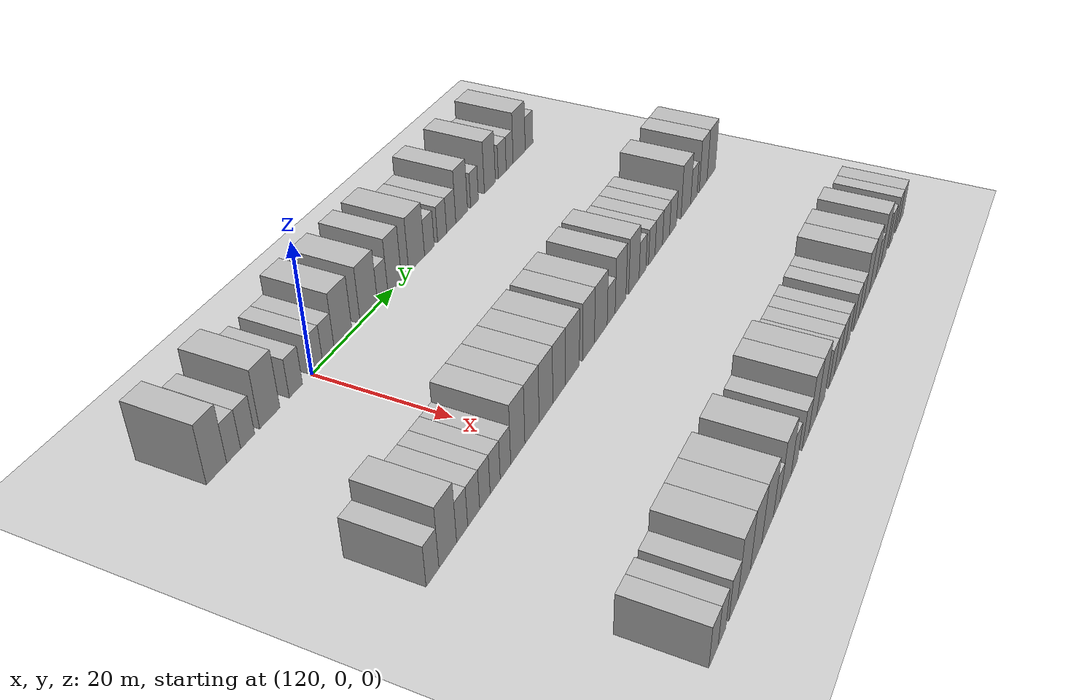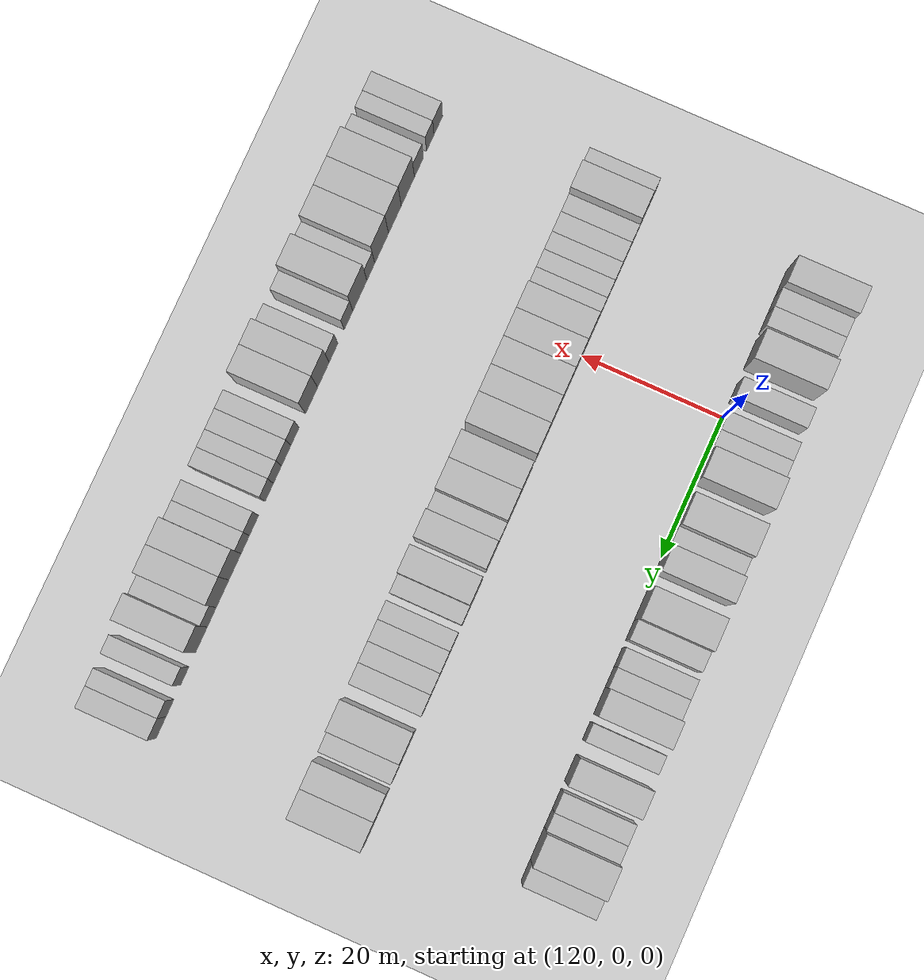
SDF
<sdf version="1.6">
 <world name="default">
  <include>
   <name>ground_plane_2</name>
   <uri>model://HANNAS_ground_plane</uri>
   <pose>100 0 0  0 0 0</pose>
  </include>
  <model name="building_825">
   <static>1</static>
   <pose>115.0000 -19.5001 0 0.000000 0.000000 0.000000</pose>
   <link name="link">
    <pose>0 0 4.50 0 0 0</pose>
    <collision name="collision"><geometry><box><size>10.0000 3.7929 9.0000</size></box></geometry></collision>
    <visual name="visual">
     <cast_shadows>0</cast_shadows>
     <geometry><box><size>10.0000 3.7929 9.0000</size></box></geometry>
     <material>
      <script>
       <uri>model://HANNAS_wall/materials/scripts</uri>
       <uri>model://HANNAS_wall/materials/textures</uri>
       <name>vrc/HANNAS_wall</name>
      </script>
     </material>
    </visual>
   </link>
  </model>
  <model name="building_826">
   <static>1</static>
   <pose>115.0000 -16.2622 0 0.000000 0.000000 0.000000</pose>
   <link name="link">
    <pose>0 0 3.00 0 0 0</pose>
    <collision name="collision"><geometry><box><size>10.0000 2.6829 6.0000</size></box></geometry></collision>
    <visual name="visual">
     <cast_shadows>0</cast_shadows>
     <geometry><box><size>10.0000 2.6829 6.0000</size></box></geometry>
     <material>
      <script>
       <uri>model://HANNAS_wall/materials/scripts</uri>
       <uri>model://HANNAS_wall/materials/textures</uri>
       <name>vrc/HANNAS_wall</name>
      </script>
     </material>
    </visual>
   </link>
  </model>
  <model name="building_827">
   <static>1</static>
   <pose>115.0000 -13.5360 0 0.000000 0.000000 0.000000</pose>
   <link name="link">
    <pose>0 0 3.00 0 0 0</pose>
    <collision name="collision"><geometry><box><size>10.0000 2.7694 6.0000</size></box></geometry></collision>
    <visual name="visual">
     <cast_shadows>0</cast_shadows>
     <geometry><box><size>10.0000 2.7694 6.0000</size></box></geometry>
     <material>
      <script>
       <uri>model://HANNAS_wall/materials/scripts</uri>
       <uri>model://HANNAS_wall/materials/textures</uri>
       <name>vrc/HANNAS_wall</name>
      </script>
     </material>
    </visual>
   </link>
  </model>
  <model name="building_828">
   <static>1</static>
   <pose>115.0000 -9.0555 0 0.000000 0.000000 0.000000</pose>
   <link name="link">
    <pose>0 0 4.50 0 0 0</pose>
    <collision name="collision"><geometry><box><size>10.0000 4.1915 9.0000</size></box></geometry></collision>
    <visual name="visual">
     <cast_shadows>0</cast_shadows>
     <geometry><box><size>10.0000 4.1915 9.0000</size></box></geometry>
     <material>
      <script>
       <uri>model://HANNAS_wall/materials/scripts</uri>
       <uri>model://HANNAS_wall/materials/textures</uri>
       <name>vrc/HANNAS_wall</name>
      </script>
     </material>
    </visual>
   </link>
  </model>
  <model name="building_829">
   <static>1</static>
   <pose>115.0000 -3.5250 0 0.000000 0.000000 0.000000</pose>
   <link name="link">
    <pose>0 0 3.00 0 0 0</pose>
    <collision name="collision"><geometry><box><size>10.0000 2.8696 6.0000</size></box></geometry></collision>
    <visual name="visual">
     <cast_shadows>0</cast_shadows>
     <geometry><box><size>10.0000 2.8696 6.0000</size></box></geometry>
     <material>
      <script>
       <uri>model://HANNAS_wall/materials/scripts</uri>
       <uri>model://HANNAS_wall/materials/textures</uri>
       <name>vrc/HANNAS_wall</name>
      </script>
     </material>
    </visual>
   </link>
  </model>
  <model name="building_830">
   <static>1</static>
   <pose>115.0000 1.2025 0 0.000000 0.000000 0.000000</pose>
   <link name="link">
    <pose>0 0 3.00 0 0 0</pose>
    <collision name="collision"><geometry><box><size>10.0000 2.5855 6.0000</size></box></geometry></collision>
    <visual name="visual">
     <cast_shadows>0</cast_shadows>
     <geometry><box><size>10.0000 2.5855 6.0000</size></box></geometry>
     <material>
      <script>
       <uri>model://HANNAS_wall/materials/scripts</uri>
       <uri>model://HANNAS_wall/materials/textures</uri>
       <name>vrc/HANNAS_wall</name>
      </script>
     </material>
    </visual>
   </link>
  </model>
  <model name="building_831">
   <static>1</static>
   <pose>115.0000 3.8654 0 0.000000 0.000000 0.000000</pose>
   <link name="link">
    <pose>0 0 3.00 0 0 0</pose>
    <collision name="collision"><geometry><box><size>10.0000 2.7402 6.0000</size></box></geometry></collision>
    <visual name="visual">
     <cast_shadows>0</cast_shadows>
     <geometry><box><size>10.0000 2.7402 6.0000</size></box></geometry>
     <material>
      <script>
       <uri>model://HANNAS_wall/materials/scripts</uri>
       <uri>model://HANNAS_wall/materials/textures</uri>
       <name>vrc/HANNAS_wall</name>
      </script>
     </material>
    </visual>
   </link>
  </model>
  <model name="building_832">
   <static>1</static>
   <pose>115.0000 7.3779 0 0.000000 0.000000 0.000000</pose>
   <link name="link">
    <pose>0 0 4.50 0 0 0</pose>
    <collision name="collision"><geometry><box><size>10.0000 4.2848 9.0000</size></box></geometry></collision>
    <visual name="visual">
     <cast_shadows>0</cast_shadows>
     <geometry><box><size>10.0000 4.2848 9.0000</size></box></geometry>
     <material>
      <script>
       <uri>model://HANNAS_wall/materials/scripts</uri>
       <uri>model://HANNAS_wall/materials/textures</uri>
       <name>vrc/HANNAS_wall</name>
      </script>
     </material>
    </visual>
   </link>
  </model>
  <model name="building_833">
   <static>1</static>
   <pose>115.0000 13.7513 0 0.000000 0.000000 0.000000</pose>
   <link name="link">
    <pose>0 0 4.50 0 0 0</pose>
    <collision name="collision"><geometry><box><size>10.0000 4.4622 9.0000</size></box></geometry></collision>
    <visual name="visual">
     <cast_shadows>0</cast_shadows>
     <geometry><box><size>10.0000 4.4622 9.0000</size></box></geometry>
     <material>
      <script>
       <uri>model://HANNAS_wall/materials/scripts</uri>
       <uri>model://HANNAS_wall/materials/textures</uri>
       <name>vrc/HANNAS_wall</name>
      </script>
     </material>
    </visual>
   </link>
  </model>
  <model name="building_834">
   <static>1</static>
   <pose>115.0000 17.3371 0 0.000000 0.000000 0.000000</pose>
   <link name="link">
    <pose>0 0 3.00 0 0 0</pose>
    <collision name="collision"><geometry><box><size>10.0000 2.7094 6.0000</size></box></geometry></collision>
    <visual name="visual">
     <cast_shadows>0</cast_shadows>
     <geometry><box><size>10.0000 2.7094 6.0000</size></box></geometry>
     <material>
      <script>
       <uri>model://HANNAS_wall/materials/scripts</uri>
       <uri>model://HANNAS_wall/materials/textures</uri>
       <name>vrc/HANNAS_wall</name>
      </script>
     </material>
    </visual>
   </link>
  </model>
  <model name="building_835">
   <static>1</static>
   <pose>115.0000 20.5198 0 0.000000 0.000000 0.000000</pose>
   <link name="link">
    <pose>0 0 4.50 0 0 0</pose>
    <collision name="collision"><geometry><box><size>10.0000 3.6559 9.0000</size></box></geometry></collision>
    <visual name="visual">
     <cast_shadows>0</cast_shadows>
     <geometry><box><size>10.0000 3.6559 9.0000</size></box></geometry>
     <material>
      <script>
       <uri>model://HANNAS_wall/materials/scripts</uri>
       <uri>model://HANNAS_wall/materials/textures</uri>
       <name>vrc/HANNAS_wall</name>
      </script>
     </material>
    </visual>
   </link>
  </model>
  <model name="building_836">
   <static>1</static>
   <pose>115.0000 26.5939 0 0.000000 0.000000 0.000000</pose>
   <link name="link">
    <pose>0 0 4.50 0 0 0</pose>
    <collision name="collision"><geometry><box><size>10.0000 4.4925 9.0000</size></box></geometry></collision>
    <visual name="visual">
     <cast_shadows>0</cast_shadows>
     <geometry><box><size>10.0000 4.4925 9.0000</size></box></geometry>
     <material>
      <script>
       <uri>model://HANNAS_wall/materials/scripts</uri>
       <uri>model://HANNAS_wall/materials/textures</uri>
       <name>vrc/HANNAS_wall</name>
      </script>
     </material>
    </visual>
   </link>
  </model>
  <model name="building_837">
   <static>1</static>
   <pose>115.0000 30.2646 0 0.000000 0.000000 0.000000</pose>
   <link name="link">
    <pose>0 0 3.00 0 0 0</pose>
    <collision name="collision"><geometry><box><size>10.0000 2.8488 6.0000</size></box></geometry></collision>
    <visual name="visual">
     <cast_shadows>0</cast_shadows>
     <geometry><box><size>10.0000 2.8488 6.0000</size></box></geometry>
     <material>
      <script>
       <uri>model://HANNAS_wall/materials/scripts</uri>
       <uri>model://HANNAS_wall/materials/textures</uri>
       <name>vrc/HANNAS_wall</name>
      </script>
     </material>
    </visual>
   </link>
  </model>
  <model name="building_838">
   <static>1</static>
   <pose>115.0000 34.0510 0 0.000000 0.000000 0.000000</pose>
   <link name="link">
    <pose>0 0 3.00 0 0 0</pose>
    <collision name="collision"><geometry><box><size>10.0000 2.7242 6.0000</size></box></geometry></collision>
    <visual name="visual">
     <cast_shadows>0</cast_shadows>
     <geometry><box><size>10.0000 2.7242 6.0000</size></box></geometry>
     <material>
      <script>
       <uri>model://HANNAS_wall/materials/scripts</uri>
       <uri>model://HANNAS_wall/materials/textures</uri>
       <name>vrc/HANNAS_wall</name>
      </script>
     </material>
    </visual>
   </link>
  </model>
  <model name="building_839">
   <static>1</static>
   <pose>115.0000 36.8342 0 0.000000 0.000000 0.000000</pose>
   <link name="link">
    <pose>0 0 3.00 0 0 0</pose>
    <collision name="collision"><geometry><box><size>10.0000 2.8423 6.0000</size></box></geometry></collision>
    <visual name="visual">
     <cast_shadows>0</cast_shadows>
     <geometry><box><size>10.0000 2.8423 6.0000</size></box></geometry>
     <material>
      <script>
       <uri>model://HANNAS_wall/materials/scripts</uri>
       <uri>model://HANNAS_wall/materials/textures</uri>
       <name>vrc/HANNAS_wall</name>
      </script>
     </material>
    </visual>
   </link>
  </model>
  <model name="building_840">
   <static>1</static>
   <pose>115.0000 40.1253 0 0.000000 0.000000 0.000000</pose>
   <link name="link">
    <pose>0 0 4.50 0 0 0</pose>
    <collision name="collision"><geometry><box><size>10.0000 3.7399 9.0000</size></box></geometry></collision>
    <visual name="visual">
     <cast_shadows>0</cast_shadows>
     <geometry><box><size>10.0000 3.7399 9.0000</size></box></geometry>
     <material>
      <script>
       <uri>model://HANNAS_wall/materials/scripts</uri>
       <uri>model://HANNAS_wall/materials/textures</uri>
       <name>vrc/HANNAS_wall</name>
      </script>
     </material>
    </visual>
   </link>
  </model>
  <model name="building_841">
   <static>1</static>
   <pose>115.0000 44.2584 0 0.000000 0.000000 0.000000</pose>
   <link name="link">
    <pose>0 0 3.00 0 0 0</pose>
    <collision name="collision"><geometry><box><size>10.0000 2.5263 6.0000</size></box></geometry></collision>
    <visual name="visual">
     <cast_shadows>0</cast_shadows>
     <geometry><box><size>10.0000 2.5263 6.0000</size></box></geometry>
     <material>
      <script>
       <uri>model://HANNAS_wall/materials/scripts</uri>
       <uri>model://HANNAS_wall/materials/textures</uri>
       <name>vrc/HANNAS_wall</name>
      </script>
     </material>
    </visual>
   </link>
  </model>
  <model name="building_842">
   <static>1</static>
   <pose>115.0000 49.4005 0 0.000000 0.000000 0.000000</pose>
   <link name="link">
    <pose>0 0 4.50 0 0 0</pose>
    <collision name="collision"><geometry><box><size>10.0000 3.7580 9.0000</size></box></geometry></collision>
    <visual name="visual">
     <cast_shadows>0</cast_shadows>
     <geometry><box><size>10.0000 3.7580 9.0000</size></box></geometry>
     <material>
      <script>
       <uri>model://HANNAS_wall/materials/scripts</uri>
       <uri>model://HANNAS_wall/materials/textures</uri>
       <name>vrc/HANNAS_wall</name>
      </script>
     </material>
    </visual>
   </link>
  </model>
  <model name="building_843">
   <static>1</static>
   <pose>115.0000 53.6810 0 0.000000 0.000000 0.000000</pose>
   <link name="link">
    <pose>0 0 3.00 0 0 0</pose>
    <collision name="collision"><geometry><box><size>10.0000 2.8030 6.0000</size></box></geometry></collision>
    <visual name="visual">
     <cast_shadows>0</cast_shadows>
     <geometry><box><size>10.0000 2.8030 6.0000</size></box></geometry>
     <material>
      <script>
       <uri>model://HANNAS_wall/materials/scripts</uri>
       <uri>model://HANNAS_wall/materials/textures</uri>
       <name>vrc/HANNAS_wall</name>
      </script>
     </material>
    </visual>
   </link>
  </model>
  <model name="building_844">
   <static>1</static>
   <pose>115.0000 56.3268 0 0.000000 0.000000 0.000000</pose>
   <link name="link">
    <pose>0 0 3.00 0 0 0</pose>
    <collision name="collision"><geometry><box><size>10.0000 2.4885 6.0000</size></box></geometry></collision>
    <visual name="visual">
     <cast_shadows>0</cast_shadows>
     <geometry><box><size>10.0000 2.4885 6.0000</size></box></geometry>
     <material>
      <script>
       <uri>model://HANNAS_wall/materials/scripts</uri>
       <uri>model://HANNAS_wall/materials/textures</uri>
       <name>vrc/HANNAS_wall</name>
      </script>
     </material>
    </visual>
   </link>
  </model>
  <model name="building_845">
   <static>1</static>
   <pose>115.0000 59.7958 0 0.000000 0.000000 0.000000</pose>
   <link name="link">
    <pose>0 0 4.50 0 0 0</pose>
    <collision name="collision"><geometry><box><size>10.0000 4.4495 9.0000</size></box></geometry></collision>
    <visual name="visual">
     <cast_shadows>0</cast_shadows>
     <geometry><box><size>10.0000 4.4495 9.0000</size></box></geometry>
     <material>
      <script>
       <uri>model://HANNAS_wall/materials/scripts</uri>
       <uri>model://HANNAS_wall/materials/textures</uri>
       <name>vrc/HANNAS_wall</name>
      </script>
     </material>
    </visual>
   </link>
  </model>
  <model name="building_846">
   <static>1</static>
   <pose>115.0000 63.4769 0 0.000000 0.000000 0.000000</pose>
   <link name="link">
    <pose>0 0 3.00 0 0 0</pose>
    <collision name="collision"><geometry><box><size>10.0000 2.9127 6.0000</size></box></geometry></collision>
    <visual name="visual">
     <cast_shadows>0</cast_shadows>
     <geometry><box><size>10.0000 2.9127 6.0000</size></box></geometry>
     <material>
      <script>
       <uri>model://HANNAS_wall/materials/scripts</uri>
       <uri>model://HANNAS_wall/materials/textures</uri>
       <name>vrc/HANNAS_wall</name>
      </script>
     </material>
    </visual>
   </link>
  </model>
  <model name="building_1055">
   <static>1</static>
   <pose>145.0000 -22.9527 0 0.000000 0.000000 0.000000</pose>
   <link name="link">
    <pose>0 0 3.00 0 0 0</pose>
    <collision name="collision"><geometry><box><size>10.0000 2.7662 6.0000</size></box></geometry></collision>
    <visual name="visual">
     <cast_shadows>0</cast_shadows>
     <geometry><box><size>10.0000 2.7662 6.0000</size></box></geometry>
     <material>
      <script>
       <uri>model://HANNAS_wall/materials/scripts</uri>
       <uri>model://HANNAS_wall/materials/textures</uri>
       <name>vrc/HANNAS_wall</name>
      </script>
     </material>
    </visual>
   </link>
  </model>
  <model name="building_1056">
   <static>1</static>
   <pose>145.0000 -19.6092 0 0.000000 0.000000 0.000000</pose>
   <link name="link">
    <pose>0 0 4.50 0 0 0</pose>
    <collision name="collision"><geometry><box><size>10.0000 3.9207 9.0000</size></box></geometry></collision>
    <visual name="visual">
     <cast_shadows>0</cast_shadows>
     <geometry><box><size>10.0000 3.9207 9.0000</size></box></geometry>
     <material>
      <script>
       <uri>model://HANNAS_wall/materials/scripts</uri>
       <uri>model://HANNAS_wall/materials/textures</uri>
       <name>vrc/HANNAS_wall</name>
      </script>
     </material>
    </visual>
   </link>
  </model>
  <model name="building_1057">
   <static>1</static>
   <pose>145.0000 -16.3688 0 0.000000 0.000000 0.000000</pose>
   <link name="link">
    <pose>0 0 3.00 0 0 0</pose>
    <collision name="collision"><geometry><box><size>10.0000 2.5601 6.0000</size></box></geometry></collision>
    <visual name="visual">
     <cast_shadows>0</cast_shadows>
     <geometry><box><size>10.0000 2.5601 6.0000</size></box></geometry>
     <material>
      <script>
       <uri>model://HANNAS_wall/materials/scripts</uri>
       <uri>model://HANNAS_wall/materials/textures</uri>
       <name>vrc/HANNAS_wall</name>
      </script>
     </material>
    </visual>
   </link>
  </model>
  <model name="building_1058">
   <static>1</static>
   <pose>145.0000 -13.6646 0 0.000000 0.000000 0.000000</pose>
   <link name="link">
    <pose>0 0 3.00 0 0 0</pose>
    <collision name="collision"><geometry><box><size>10.0000 2.8483 6.0000</size></box></geometry></collision>
    <visual name="visual">
     <cast_shadows>0</cast_shadows>
     <geometry><box><size>10.0000 2.8483 6.0000</size></box></geometry>
     <material>
      <script>
       <uri>model://HANNAS_wall/materials/scripts</uri>
       <uri>model://HANNAS_wall/materials/textures</uri>
       <name>vrc/HANNAS_wall</name>
      </script>
     </material>
    </visual>
   </link>
  </model>
  <model name="building_1059">
   <static>1</static>
   <pose>145.0000 -10.9659 0 0.000000 0.000000 0.000000</pose>
   <link name="link">
    <pose>0 0 3.00 0 0 0</pose>
    <collision name="collision"><geometry><box><size>10.0000 2.5492 6.0000</size></box></geometry></collision>
    <visual name="visual">
     <cast_shadows>0</cast_shadows>
     <geometry><box><size>10.0000 2.5492 6.0000</size></box></geometry>
     <material>
      <script>
       <uri>model://HANNAS_wall/materials/scripts</uri>
       <uri>model://HANNAS_wall/materials/textures</uri>
       <name>vrc/HANNAS_wall</name>
      </script>
     </material>
    </visual>
   </link>
  </model>
  <model name="building_1060">
   <static>1</static>
   <pose>145.0000 -8.4290 0 0.000000 0.000000 0.000000</pose>
   <link name="link">
    <pose>0 0 3.00 0 0 0</pose>
    <collision name="collision"><geometry><box><size>10.0000 2.5245 6.0000</size></box></geometry></collision>
    <visual name="visual">
     <cast_shadows>0</cast_shadows>
     <geometry><box><size>10.0000 2.5245 6.0000</size></box></geometry>
     <material>
      <script>
       <uri>model://HANNAS_wall/materials/scripts</uri>
       <uri>model://HANNAS_wall/materials/textures</uri>
       <name>vrc/HANNAS_wall</name>
      </script>
     </material>
    </visual>
   </link>
  </model>
  <model name="building_1061">
   <static>1</static>
   <pose>145.0000 -5.8126 0 0.000000 0.000000 0.000000</pose>
   <link name="link">
    <pose>0 0 3.00 0 0 0</pose>
    <collision name="collision"><geometry><box><size>10.0000 2.7082 6.0000</size></box></geometry></collision>
    <visual name="visual">
     <cast_shadows>0</cast_shadows>
     <geometry><box><size>10.0000 2.7082 6.0000</size></box></geometry>
     <material>
      <script>
       <uri>model://HANNAS_wall/materials/scripts</uri>
       <uri>model://HANNAS_wall/materials/textures</uri>
       <name>vrc/HANNAS_wall</name>
      </script>
     </material>
    </visual>
   </link>
  </model>
  <model name="building_1062">
   <static>1</static>
   <pose>145.0000 -2.5763 0 0.000000 0.000000 0.000000</pose>
   <link name="link">
    <pose>0 0 4.50 0 0 0</pose>
    <collision name="collision"><geometry><box><size>10.0000 3.7644 9.0000</size></box></geometry></collision>
    <visual name="visual">
     <cast_shadows>0</cast_shadows>
     <geometry><box><size>10.0000 3.7644 9.0000</size></box></geometry>
     <material>
      <script>
       <uri>model://HANNAS_wall/materials/scripts</uri>
       <uri>model://HANNAS_wall/materials/textures</uri>
       <name>vrc/HANNAS_wall</name>
      </script>
     </material>
    </visual>
   </link>
  </model>
  <model name="building_1063">
   <static>1</static>
   <pose>145.0000 1.2778 0 0.000000 0.000000 0.000000</pose>
   <link name="link">
    <pose>0 0 4.50 0 0 0</pose>
    <collision name="collision"><geometry><box><size>10.0000 3.9438 9.0000</size></box></geometry></collision>
    <visual name="visual">
     <cast_shadows>0</cast_shadows>
     <geometry><box><size>10.0000 3.9438 9.0000</size></box></geometry>
     <material>
      <script>
       <uri>model://HANNAS_wall/materials/scripts</uri>
       <uri>model://HANNAS_wall/materials/textures</uri>
       <name>vrc/HANNAS_wall</name>
      </script>
     </material>
    </visual>
   </link>
  </model>
  <model name="building_1064">
   <static>1</static>
   <pose>145.0000 5.2149 0 0.000000 0.000000 0.000000</pose>
   <link name="link">
    <pose>0 0 4.50 0 0 0</pose>
    <collision name="collision"><geometry><box><size>10.0000 3.9303 9.0000</size></box></geometry></collision>
    <visual name="visual">
     <cast_shadows>0</cast_shadows>
     <geometry><box><size>10.0000 3.9303 9.0000</size></box></geometry>
     <material>
      <script>
       <uri>model://HANNAS_wall/materials/scripts</uri>
       <uri>model://HANNAS_wall/materials/textures</uri>
       <name>vrc/HANNAS_wall</name>
      </script>
     </material>
    </visual>
   </link>
  </model>
  <model name="building_1065">
   <static>1</static>
   <pose>145.0000 9.0764 0 0.000000 0.000000 0.000000</pose>
   <link name="link">
    <pose>0 0 4.50 0 0 0</pose>
    <collision name="collision"><geometry><box><size>10.0000 3.7928 9.0000</size></box></geometry></collision>
    <visual name="visual">
     <cast_shadows>0</cast_shadows>
     <geometry><box><size>10.0000 3.7928 9.0000</size></box></geometry>
     <material>
      <script>
       <uri>model://HANNAS_wall/materials/scripts</uri>
       <uri>model://HANNAS_wall/materials/textures</uri>
       <name>vrc/HANNAS_wall</name>
      </script>
     </material>
    </visual>
   </link>
  </model>
  <model name="building_1066">
   <static>1</static>
   <pose>145.0000 13.1173 0 0.000000 0.000000 0.000000</pose>
   <link name="link">
    <pose>0 0 4.50 0 0 0</pose>
    <collision name="collision"><geometry><box><size>10.0000 4.2890 9.0000</size></box></geometry></collision>
    <visual name="visual">
     <cast_shadows>0</cast_shadows>
     <geometry><box><size>10.0000 4.2890 9.0000</size></box></geometry>
     <material>
      <script>
       <uri>model://HANNAS_wall/materials/scripts</uri>
       <uri>model://HANNAS_wall/materials/textures</uri>
       <name>vrc/HANNAS_wall</name>
      </script>
     </material>
    </visual>
   </link>
  </model>
  <model name="building_1067">
   <static>1</static>
   <pose>145.0000 18.2080 0 0.000000 0.000000 0.000000</pose>
   <link name="link">
    <pose>0 0 4.50 0 0 0</pose>
    <collision name="collision"><geometry><box><size>10.0000 3.8925 9.0000</size></box></geometry></collision>
    <visual name="visual">
     <cast_shadows>0</cast_shadows>
     <geometry><box><size>10.0000 3.8925 9.0000</size></box></geometry>
     <material>
      <script>
       <uri>model://HANNAS_wall/materials/scripts</uri>
       <uri>model://HANNAS_wall/materials/textures</uri>
       <name>vrc/HANNAS_wall</name>
      </script>
     </material>
    </visual>
   </link>
  </model>
  <model name="building_1068">
   <static>1</static>
   <pose>145.0000 22.2928 0 0.000000 0.000000 0.000000</pose>
   <link name="link">
    <pose>0 0 4.50 0 0 0</pose>
    <collision name="collision"><geometry><box><size>10.0000 4.2771 9.0000</size></box></geometry></collision>
    <visual name="visual">
     <cast_shadows>0</cast_shadows>
     <geometry><box><size>10.0000 4.2771 9.0000</size></box></geometry>
     <material>
      <script>
       <uri>model://HANNAS_wall/materials/scripts</uri>
       <uri>model://HANNAS_wall/materials/textures</uri>
       <name>vrc/HANNAS_wall</name>
      </script>
     </material>
    </visual>
   </link>
  </model>
  <model name="building_1069">
   <static>1</static>
   <pose>145.0000 25.8122 0 0.000000 0.000000 0.000000</pose>
   <link name="link">
    <pose>0 0 3.00 0 0 0</pose>
    <collision name="collision"><geometry><box><size>10.0000 2.7617 6.0000</size></box></geometry></collision>
    <visual name="visual">
     <cast_shadows>0</cast_shadows>
     <geometry><box><size>10.0000 2.7617 6.0000</size></box></geometry>
     <material>
      <script>
       <uri>model://HANNAS_wall/materials/scripts</uri>
       <uri>model://HANNAS_wall/materials/textures</uri>
       <name>vrc/HANNAS_wall</name>
      </script>
     </material>
    </visual>
   </link>
  </model>
  <model name="building_1070">
   <static>1</static>
   <pose>145.0000 29.1305 0 0.000000 0.000000 0.000000</pose>
   <link name="link">
    <pose>0 0 4.50 0 0 0</pose>
    <collision name="collision"><geometry><box><size>10.0000 3.8748 9.0000</size></box></geometry></collision>
    <visual name="visual">
     <cast_shadows>0</cast_shadows>
     <geometry><box><size>10.0000 3.8748 9.0000</size></box></geometry>
     <material>
      <script>
       <uri>model://HANNAS_wall/materials/scripts</uri>
       <uri>model://HANNAS_wall/materials/textures</uri>
       <name>vrc/HANNAS_wall</name>
      </script>
     </material>
    </visual>
   </link>
  </model>
  <model name="building_1071">
   <static>1</static>
   <pose>145.0000 34.0139 0 0.000000 0.000000 0.000000</pose>
   <link name="link">
    <pose>0 0 4.50 0 0 0</pose>
    <collision name="collision"><geometry><box><size>10.0000 3.8920 9.0000</size></box></geometry></collision>
    <visual name="visual">
     <cast_shadows>0</cast_shadows>
     <geometry><box><size>10.0000 3.8920 9.0000</size></box></geometry>
     <material>
      <script>
       <uri>model://HANNAS_wall/materials/scripts</uri>
       <uri>model://HANNAS_wall/materials/textures</uri>
       <name>vrc/HANNAS_wall</name>
      </script>
     </material>
    </visual>
   </link>
  </model>
  <model name="building_1072">
   <static>1</static>
   <pose>145.0000 37.2792 0 0.000000 0.000000 0.000000</pose>
   <link name="link">
    <pose>0 0 3.00 0 0 0</pose>
    <collision name="collision"><geometry><box><size>10.0000 2.6385 6.0000</size></box></geometry></collision>
    <visual name="visual">
     <cast_shadows>0</cast_shadows>
     <geometry><box><size>10.0000 2.6385 6.0000</size></box></geometry>
     <material>
      <script>
       <uri>model://HANNAS_wall/materials/scripts</uri>
       <uri>model://HANNAS_wall/materials/textures</uri>
       <name>vrc/HANNAS_wall</name>
      </script>
     </material>
    </visual>
   </link>
  </model>
  <model name="building_1073">
   <static>1</static>
   <pose>145.0000 40.8996 0 0.000000 0.000000 0.000000</pose>
   <link name="link">
    <pose>0 0 3.00 0 0 0</pose>
    <collision name="collision"><geometry><box><size>10.0000 2.6022 6.0000</size></box></geometry></collision>
    <visual name="visual">
     <cast_shadows>0</cast_shadows>
     <geometry><box><size>10.0000 2.6022 6.0000</size></box></geometry>
     <material>
      <script>
       <uri>model://HANNAS_wall/materials/scripts</uri>
       <uri>model://HANNAS_wall/materials/textures</uri>
       <name>vrc/HANNAS_wall</name>
      </script>
     </material>
    </visual>
   </link>
  </model>
  <model name="building_1074">
   <static>1</static>
   <pose>145.0000 43.6983 0 0.000000 0.000000 0.000000</pose>
   <link name="link">
    <pose>0 0 3.00 0 0 0</pose>
    <collision name="collision"><geometry><box><size>10.0000 2.9951 6.0000</size></box></geometry></collision>
    <visual name="visual">
     <cast_shadows>0</cast_shadows>
     <geometry><box><size>10.0000 2.9951 6.0000</size></box></geometry>
     <material>
      <script>
       <uri>model://HANNAS_wall/materials/scripts</uri>
       <uri>model://HANNAS_wall/materials/textures</uri>
       <name>vrc/HANNAS_wall</name>
      </script>
     </material>
    </visual>
   </link>
  </model>
  <model name="building_1075">
   <static>1</static>
   <pose>145.0000 46.6539 0 0.000000 0.000000 0.000000</pose>
   <link name="link">
    <pose>0 0 3.00 0 0 0</pose>
    <collision name="collision"><geometry><box><size>10.0000 2.9160 6.0000</size></box></geometry></collision>
    <visual name="visual">
     <cast_shadows>0</cast_shadows>
     <geometry><box><size>10.0000 2.9160 6.0000</size></box></geometry>
     <material>
      <script>
       <uri>model://HANNAS_wall/materials/scripts</uri>
       <uri>model://HANNAS_wall/materials/textures</uri>
       <name>vrc/HANNAS_wall</name>
      </script>
     </material>
    </visual>
   </link>
  </model>
  <model name="building_1076">
   <static>1</static>
   <pose>145.0000 49.5861 0 0.000000 0.000000 0.000000</pose>
   <link name="link">
    <pose>0 0 3.00 0 0 0</pose>
    <collision name="collision"><geometry><box><size>10.0000 2.9484 6.0000</size></box></geometry></collision>
    <visual name="visual">
     <cast_shadows>0</cast_shadows>
     <geometry><box><size>10.0000 2.9484 6.0000</size></box></geometry>
     <material>
      <script>
       <uri>model://HANNAS_wall/materials/scripts</uri>
       <uri>model://HANNAS_wall/materials/textures</uri>
       <name>vrc/HANNAS_wall</name>
      </script>
     </material>
    </visual>
   </link>
  </model>
  <model name="building_1077">
   <static>1</static>
   <pose>145.0000 55.2108 0 0.000000 0.000000 0.000000</pose>
   <link name="link">
    <pose>0 0 4.50 0 0 0</pose>
    <collision name="collision"><geometry><box><size>10.0000 4.3011 9.0000</size></box></geometry></collision>
    <visual name="visual">
     <cast_shadows>0</cast_shadows>
     <geometry><box><size>10.0000 4.3011 9.0000</size></box></geometry>
     <material>
      <script>
       <uri>model://HANNAS_wall/materials/scripts</uri>
       <uri>model://HANNAS_wall/materials/textures</uri>
       <name>vrc/HANNAS_wall</name>
      </script>
     </material>
    </visual>
   </link>
  </model>
  <model name="building_1078">
   <static>1</static>
   <pose>145.0000 58.8079 0 0.000000 0.000000 0.000000</pose>
   <link name="link">
    <pose>0 0 3.00 0 0 0</pose>
    <collision name="collision"><geometry><box><size>10.0000 2.8930 6.0000</size></box></geometry></collision>
    <visual name="visual">
     <cast_shadows>0</cast_shadows>
     <geometry><box><size>10.0000 2.8930 6.0000</size></box></geometry>
     <material>
      <script>
       <uri>model://HANNAS_wall/materials/scripts</uri>
       <uri>model://HANNAS_wall/materials/textures</uri>
       <name>vrc/HANNAS_wall</name>
      </script>
     </material>
    </visual>
   </link>
  </model>
  <model name="building_1079">
   <static>1</static>
   <pose>145.0000 63.1135 0 0.000000 0.000000 0.000000</pose>
   <link name="link">
    <pose>0 0 4.50 0 0 0</pose>
    <collision name="collision"><geometry><box><size>10.0000 3.7182 9.0000</size></box></geometry></collision>
    <visual name="visual">
     <cast_shadows>0</cast_shadows>
     <geometry><box><size>10.0000 3.7182 9.0000</size></box></geometry>
     <material>
      <script>
       <uri>model://HANNAS_wall/materials/scripts</uri>
       <uri>model://HANNAS_wall/materials/textures</uri>
       <name>vrc/HANNAS_wall</name>
      </script>
     </material>
    </visual>
   </link>
  </model>
  <model name="building_1080">
   <static>1</static>
   <pose>145.0000 66.9706 0 0.000000 0.000000 0.000000</pose>
   <link name="link">
    <pose>0 0 4.50 0 0 0</pose>
    <collision name="collision"><geometry><box><size>10.0000 3.9960 9.0000</size></box></geometry></collision>
    <visual name="visual">
     <cast_shadows>0</cast_shadows>
     <geometry><box><size>10.0000 3.9960 9.0000</size></box></geometry>
     <material>
      <script>
       <uri>model://HANNAS_wall/materials/scripts</uri>
       <uri>model://HANNAS_wall/materials/textures</uri>
       <name>vrc/HANNAS_wall</name>
      </script>
     </material>
    </visual>
   </link>
  </model>
  <model name="building_1261">
   <static>1</static>
   <pose>175.0000 -20.6606 0 0.000000 0.000000 0.000000</pose>
   <link name="link">
    <pose>0 0 3.00 0 0 0</pose>
    <collision name="collision"><geometry><box><size>10.0000 2.7989 6.0000</size></box></geometry></collision>
    <visual name="visual">
     <cast_shadows>0</cast_shadows>
     <geometry><box><size>10.0000 2.7989 6.0000</size></box></geometry>
     <material>
      <script>
       <uri>model://HANNAS_wall/materials/scripts</uri>
       <uri>model://HANNAS_wall/materials/textures</uri>
       <name>vrc/HANNAS_wall</name>
      </script>
     </material>
    </visual>
   </link>
  </model>
  <model name="building_1262">
   <static>1</static>
   <pose>175.0000 -18.0554 0 0.000000 0.000000 0.000000</pose>
   <link name="link">
    <pose>0 0 3.00 0 0 0</pose>
    <collision name="collision"><geometry><box><size>10.0000 2.4115 6.0000</size></box></geometry></collision>
    <visual name="visual">
     <cast_shadows>0</cast_shadows>
     <geometry><box><size>10.0000 2.4115 6.0000</size></box></geometry>
     <material>
      <script>
       <uri>model://HANNAS_wall/materials/scripts</uri>
       <uri>model://HANNAS_wall/materials/textures</uri>
       <name>vrc/HANNAS_wall</name>
      </script>
     </material>
    </visual>
   </link>
  </model>
  <model name="building_1263">
   <static>1</static>
   <pose>175.0000 -14.4007 0 0.000000 0.000000 0.000000</pose>
   <link name="link">
    <pose>0 0 3.00 0 0 0</pose>
    <collision name="collision"><geometry><box><size>10.0000 2.8979 6.0000</size></box></geometry></collision>
    <visual name="visual">
     <cast_shadows>0</cast_shadows>
     <geometry><box><size>10.0000 2.8979 6.0000</size></box></geometry>
     <material>
      <script>
       <uri>model://HANNAS_wall/materials/scripts</uri>
       <uri>model://HANNAS_wall/materials/textures</uri>
       <name>vrc/HANNAS_wall</name>
      </script>
     </material>
    </visual>
   </link>
  </model>
  <model name="building_1264">
   <static>1</static>
   <pose>175.0000 -10.8359 0 0.000000 0.000000 0.000000</pose>
   <link name="link">
    <pose>0 0 4.50 0 0 0</pose>
    <collision name="collision"><geometry><box><size>10.0000 4.2317 9.0000</size></box></geometry></collision>
    <visual name="visual">
     <cast_shadows>0</cast_shadows>
     <geometry><box><size>10.0000 4.2317 9.0000</size></box></geometry>
     <material>
      <script>
       <uri>model://HANNAS_wall/materials/scripts</uri>
       <uri>model://HANNAS_wall/materials/textures</uri>
       <name>vrc/HANNAS_wall</name>
      </script>
     </material>
    </visual>
   </link>
  </model>
  <model name="building_1265">
   <static>1</static>
   <pose>175.0000 -6.6666 0 0.000000 0.000000 0.000000</pose>
   <link name="link">
    <pose>0 0 4.50 0 0 0</pose>
    <collision name="collision"><geometry><box><size>10.0000 4.1068 9.0000</size></box></geometry></collision>
    <visual name="visual">
     <cast_shadows>0</cast_shadows>
     <geometry><box><size>10.0000 4.1068 9.0000</size></box></geometry>
     <material>
      <script>
       <uri>model://HANNAS_wall/materials/scripts</uri>
       <uri>model://HANNAS_wall/materials/textures</uri>
       <name>vrc/HANNAS_wall</name>
      </script>
     </material>
    </visual>
   </link>
  </model>
  <model name="building_1266">
   <static>1</static>
   <pose>175.0000 -2.4213 0 0.000000 0.000000 0.000000</pose>
   <link name="link">
    <pose>0 0 4.50 0 0 0</pose>
    <collision name="collision"><geometry><box><size>10.0000 4.3839 9.0000</size></box></geometry></collision>
    <visual name="visual">
     <cast_shadows>0</cast_shadows>
     <geometry><box><size>10.0000 4.3839 9.0000</size></box></geometry>
     <material>
      <script>
       <uri>model://HANNAS_wall/materials/scripts</uri>
       <uri>model://HANNAS_wall/materials/textures</uri>
       <name>vrc/HANNAS_wall</name>
      </script>
     </material>
    </visual>
   </link>
  </model>
  <model name="building_1267">
   <static>1</static>
   <pose>175.0000 1.0332 0 0.000000 0.000000 0.000000</pose>
   <link name="link">
    <pose>0 0 3.00 0 0 0</pose>
    <collision name="collision"><geometry><box><size>10.0000 2.5250 6.0000</size></box></geometry></collision>
    <visual name="visual">
     <cast_shadows>0</cast_shadows>
     <geometry><box><size>10.0000 2.5250 6.0000</size></box></geometry>
     <material>
      <script>
       <uri>model://HANNAS_wall/materials/scripts</uri>
       <uri>model://HANNAS_wall/materials/textures</uri>
       <name>vrc/HANNAS_wall</name>
      </script>
     </material>
    </visual>
   </link>
  </model>
  <model name="building_1268">
   <static>1</static>
   <pose>175.0000 4.5269 0 0.000000 0.000000 0.000000</pose>
   <link name="link">
    <pose>0 0 4.50 0 0 0</pose>
    <collision name="collision"><geometry><box><size>10.0000 4.4624 9.0000</size></box></geometry></collision>
    <visual name="visual">
     <cast_shadows>0</cast_shadows>
     <geometry><box><size>10.0000 4.4624 9.0000</size></box></geometry>
     <material>
      <script>
       <uri>model://HANNAS_wall/materials/scripts</uri>
       <uri>model://HANNAS_wall/materials/textures</uri>
       <name>vrc/HANNAS_wall</name>
      </script>
     </material>
    </visual>
   </link>
  </model>
  <model name="building_1269">
   <static>1</static>
   <pose>175.0000 8.1230 0 0.000000 0.000000 0.000000</pose>
   <link name="link">
    <pose>0 0 3.00 0 0 0</pose>
    <collision name="collision"><geometry><box><size>10.0000 2.7300 6.0000</size></box></geometry></collision>
    <visual name="visual">
     <cast_shadows>0</cast_shadows>
     <geometry><box><size>10.0000 2.7300 6.0000</size></box></geometry>
     <material>
      <script>
       <uri>model://HANNAS_wall/materials/scripts</uri>
       <uri>model://HANNAS_wall/materials/textures</uri>
       <name>vrc/HANNAS_wall</name>
      </script>
     </material>
    </visual>
   </link>
  </model>
  <model name="building_1270">
   <static>1</static>
   <pose>175.0000 12.8725 0 0.000000 0.000000 0.000000</pose>
   <link name="link">
    <pose>0 0 3.00 0 0 0</pose>
    <collision name="collision"><geometry><box><size>10.0000 2.7689 6.0000</size></box></geometry></collision>
    <visual name="visual">
     <cast_shadows>0</cast_shadows>
     <geometry><box><size>10.0000 2.7689 6.0000</size></box></geometry>
     <material>
      <script>
       <uri>model://HANNAS_wall/materials/scripts</uri>
       <uri>model://HANNAS_wall/materials/textures</uri>
       <name>vrc/HANNAS_wall</name>
      </script>
     </material>
    </visual>
   </link>
  </model>
  <model name="building_1271">
   <static>1</static>
   <pose>175.0000 16.0693 0 0.000000 0.000000 0.000000</pose>
   <link name="link">
    <pose>0 0 4.50 0 0 0</pose>
    <collision name="collision"><geometry><box><size>10.0000 3.6248 9.0000</size></box></geometry></collision>
    <visual name="visual">
     <cast_shadows>0</cast_shadows>
     <geometry><box><size>10.0000 3.6248 9.0000</size></box></geometry>
     <material>
      <script>
       <uri>model://HANNAS_wall/materials/scripts</uri>
       <uri>model://HANNAS_wall/materials/textures</uri>
       <name>vrc/HANNAS_wall</name>
      </script>
     </material>
    </visual>
   </link>
  </model>
  <model name="building_1272">
   <static>1</static>
   <pose>175.0000 19.7823 0 0.000000 0.000000 0.000000</pose>
   <link name="link">
    <pose>0 0 4.50 0 0 0</pose>
    <collision name="collision"><geometry><box><size>10.0000 3.8011 9.0000</size></box></geometry></collision>
    <visual name="visual">
     <cast_shadows>0</cast_shadows>
     <geometry><box><size>10.0000 3.8011 9.0000</size></box></geometry>
     <material>
      <script>
       <uri>model://HANNAS_wall/materials/scripts</uri>
       <uri>model://HANNAS_wall/materials/textures</uri>
       <name>vrc/HANNAS_wall</name>
      </script>
     </material>
    </visual>
   </link>
  </model>
  <model name="building_1273">
   <static>1</static>
   <pose>175.0000 24.9994 0 0.000000 0.000000 0.000000</pose>
   <link name="link">
    <pose>0 0 3.00 0 0 0</pose>
    <collision name="collision"><geometry><box><size>10.0000 2.6333 6.0000</size></box></geometry></collision>
    <visual name="visual">
     <cast_shadows>0</cast_shadows>
     <geometry><box><size>10.0000 2.6333 6.0000</size></box></geometry>
     <material>
      <script>
       <uri>model://HANNAS_wall/materials/scripts</uri>
       <uri>model://HANNAS_wall/materials/textures</uri>
       <name>vrc/HANNAS_wall</name>
      </script>
     </material>
    </visual>
   </link>
  </model>
  <model name="building_1274">
   <static>1</static>
   <pose>175.0000 27.7793 0 0.000000 0.000000 0.000000</pose>
   <link name="link">
    <pose>0 0 3.00 0 0 0</pose>
    <collision name="collision"><geometry><box><size>10.0000 2.9265 6.0000</size></box></geometry></collision>
    <visual name="visual">
     <cast_shadows>0</cast_shadows>
     <geometry><box><size>10.0000 2.9265 6.0000</size></box></geometry>
     <material>
      <script>
       <uri>model://HANNAS_wall/materials/scripts</uri>
       <uri>model://HANNAS_wall/materials/textures</uri>
       <name>vrc/HANNAS_wall</name>
      </script>
     </material>
    </visual>
   </link>
  </model>
  <model name="building_1275">
   <static>1</static>
   <pose>175.0000 30.4911 0 0.000000 0.000000 0.000000</pose>
   <link name="link">
    <pose>0 0 3.00 0 0 0</pose>
    <collision name="collision"><geometry><box><size>10.0000 2.4970 6.0000</size></box></geometry></collision>
    <visual name="visual">
     <cast_shadows>0</cast_shadows>
     <geometry><box><size>10.0000 2.4970 6.0000</size></box></geometry>
     <material>
      <script>
       <uri>model://HANNAS_wall/materials/scripts</uri>
       <uri>model://HANNAS_wall/materials/textures</uri>
       <name>vrc/HANNAS_wall</name>
      </script>
     </material>
    </visual>
   </link>
  </model>
  <model name="building_1276">
   <static>1</static>
   <pose>175.0000 33.0296 0 0.000000 0.000000 0.000000</pose>
   <link name="link">
    <pose>0 0 3.00 0 0 0</pose>
    <collision name="collision"><geometry><box><size>10.0000 2.5801 6.0000</size></box></geometry></collision>
    <visual name="visual">
     <cast_shadows>0</cast_shadows>
     <geometry><box><size>10.0000 2.5801 6.0000</size></box></geometry>
     <material>
      <script>
       <uri>model://HANNAS_wall/materials/scripts</uri>
       <uri>model://HANNAS_wall/materials/textures</uri>
       <name>vrc/HANNAS_wall</name>
      </script>
     </material>
    </visual>
   </link>
  </model>
  <model name="building_1277">
   <static>1</static>
   <pose>175.0000 37.7465 0 0.000000 0.000000 0.000000</pose>
   <link name="link">
    <pose>0 0 3.00 0 0 0</pose>
    <collision name="collision"><geometry><box><size>10.0000 2.8537 6.0000</size></box></geometry></collision>
    <visual name="visual">
     <cast_shadows>0</cast_shadows>
     <geometry><box><size>10.0000 2.8537 6.0000</size></box></geometry>
     <material>
      <script>
       <uri>model://HANNAS_wall/materials/scripts</uri>
       <uri>model://HANNAS_wall/materials/textures</uri>
       <name>vrc/HANNAS_wall</name>
      </script>
     </material>
    </visual>
   </link>
  </model>
  <model name="building_1278">
   <static>1</static>
   <pose>175.0000 40.4570 0 0.000000 0.000000 0.000000</pose>
   <link name="link">
    <pose>0 0 3.00 0 0 0</pose>
    <collision name="collision"><geometry><box><size>10.0000 2.5674 6.0000</size></box></geometry></collision>
    <visual name="visual">
     <cast_shadows>0</cast_shadows>
     <geometry><box><size>10.0000 2.5674 6.0000</size></box></geometry>
     <material>
      <script>
       <uri>model://HANNAS_wall/materials/scripts</uri>
       <uri>model://HANNAS_wall/materials/textures</uri>
       <name>vrc/HANNAS_wall</name>
      </script>
     </material>
    </visual>
   </link>
  </model>
  <model name="building_1279">
   <static>1</static>
   <pose>175.0000 43.6136 0 0.000000 0.000000 0.000000</pose>
   <link name="link">
    <pose>0 0 4.50 0 0 0</pose>
    <collision name="collision"><geometry><box><size>10.0000 3.7458 9.0000</size></box></geometry></collision>
    <visual name="visual">
     <cast_shadows>0</cast_shadows>
     <geometry><box><size>10.0000 3.7458 9.0000</size></box></geometry>
     <material>
      <script>
       <uri>model://HANNAS_wall/materials/scripts</uri>
       <uri>model://HANNAS_wall/materials/textures</uri>
       <name>vrc/HANNAS_wall</name>
      </script>
     </material>
    </visual>
   </link>
  </model>
  <model name="building_1280">
   <static>1</static>
   <pose>175.0000 47.4254 0 0.000000 0.000000 0.000000</pose>
   <link name="link">
    <pose>0 0 4.50 0 0 0</pose>
    <collision name="collision"><geometry><box><size>10.0000 3.8779 9.0000</size></box></geometry></collision>
    <visual name="visual">
     <cast_shadows>0</cast_shadows>
     <geometry><box><size>10.0000 3.8779 9.0000</size></box></geometry>
     <material>
      <script>
       <uri>model://HANNAS_wall/materials/scripts</uri>
       <uri>model://HANNAS_wall/materials/textures</uri>
       <name>vrc/HANNAS_wall</name>
      </script>
     </material>
    </visual>
   </link>
  </model>
  <model name="building_1281">
   <static>1</static>
   <pose>175.0000 50.7406 0 0.000000 0.000000 0.000000</pose>
   <link name="link">
    <pose>0 0 3.00 0 0 0</pose>
    <collision name="collision"><geometry><box><size>10.0000 2.7526 6.0000</size></box></geometry></collision>
    <visual name="visual">
     <cast_shadows>0</cast_shadows>
     <geometry><box><size>10.0000 2.7526 6.0000</size></box></geometry>
     <material>
      <script>
       <uri>model://HANNAS_wall/materials/scripts</uri>
       <uri>model://HANNAS_wall/materials/textures</uri>
       <name>vrc/HANNAS_wall</name>
      </script>
     </material>
    </visual>
   </link>
  </model>
  <model name="building_1282">
   <static>1</static>
   <pose>175.0000 53.9272 0 0.000000 0.000000 0.000000</pose>
   <link name="link">
    <pose>0 0 4.50 0 0 0</pose>
    <collision name="collision"><geometry><box><size>10.0000 3.6205 9.0000</size></box></geometry></collision>
    <visual name="visual">
     <cast_shadows>0</cast_shadows>
     <geometry><box><size>10.0000 3.6205 9.0000</size></box></geometry>
     <material>
      <script>
       <uri>model://HANNAS_wall/materials/scripts</uri>
       <uri>model://HANNAS_wall/materials/textures</uri>
       <name>vrc/HANNAS_wall</name>
      </script>
     </material>
    </visual>
   </link>
  </model>
  <model name="building_1283">
   <static>1</static>
   <pose>175.0000 59.0108 0 0.000000 0.000000 0.000000</pose>
   <link name="link">
    <pose>0 0 3.00 0 0 0</pose>
    <collision name="collision"><geometry><box><size>10.0000 2.5467 6.0000</size></box></geometry></collision>
    <visual name="visual">
     <cast_shadows>0</cast_shadows>
     <geometry><box><size>10.0000 2.5467 6.0000</size></box></geometry>
     <material>
      <script>
       <uri>model://HANNAS_wall/materials/scripts</uri>
       <uri>model://HANNAS_wall/materials/textures</uri>
       <name>vrc/HANNAS_wall</name>
      </script>
     </material>
    </visual>
   </link>
  </model>
  <model name="building_1284">
   <static>1</static>
   <pose>175.0000 63.4975 0 0.000000 0.000000 0.000000</pose>
   <link name="link">
    <pose>0 0 3.00 0 0 0</pose>
    <collision name="collision"><geometry><box><size>10.0000 2.4268 6.0000</size></box></geometry></collision>
    <visual name="visual">
     <cast_shadows>0</cast_shadows>
     <geometry><box><size>10.0000 2.4268 6.0000</size></box></geometry>
     <material>
      <script>
       <uri>model://HANNAS_wall/materials/scripts</uri>
       <uri>model://HANNAS_wall/materials/textures</uri>
       <name>vrc/HANNAS_wall</name>
      </script>
     </material>
    </visual>
   </link>
  </model>
  <model name="building_1285">
   <static>1</static>
   <pose>175.0000 66.2042 0 0.000000 0.000000 0.000000</pose>
   <link name="link">
    <pose>0 0 3.00 0 0 0</pose>
    <collision name="collision"><geometry><box><size>10.0000 2.9866 6.0000</size></box></geometry></collision>
    <visual name="visual">
     <cast_shadows>0</cast_shadows>
     <geometry><box><size>10.0000 2.9866 6.0000</size></box></geometry>
     <material>
      <script>
       <uri>model://HANNAS_wall/materials/scripts</uri>
       <uri>model://HANNAS_wall/materials/textures</uri>
       <name>vrc/HANNAS_wall</name>
      </script>
     </material>
    </visual>
   </link>
  </model>
 </world>
</sdf>
